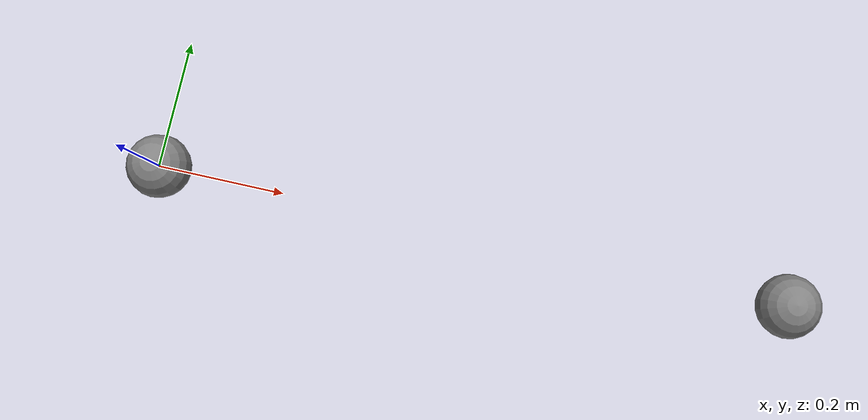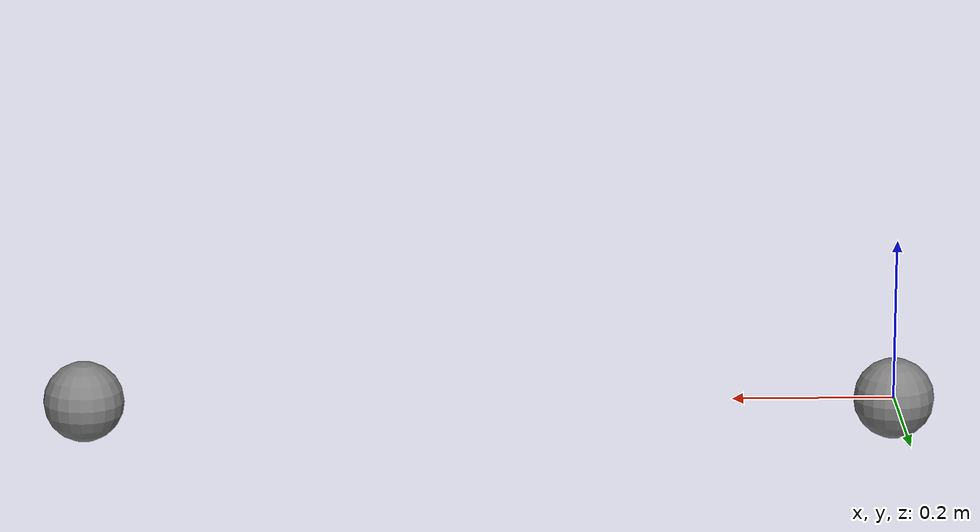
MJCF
<mujoco model="t24">
            <option gravity="0 0 0"/>
            <worldbody>
                <body name="A" pos="0 0 0">
                    <joint name="jA" type="hinge" axis="0 0 1"/>
                    <geom type="sphere" size="0.05" mass="1"/>
                    <site name="s_ref" pos="0 0 0"/>
                </body>
                <body name="B" pos="1 0 0">
                    <joint type="free"/>
                    <geom type="sphere" size="0.05" mass="1"/>
                </body>
            </worldbody>
            <sensor>
                <framequat objtype="xbody" objname="B" reftype="site" refname="s_ref"/>
            </sensor>
        </mujoco>
